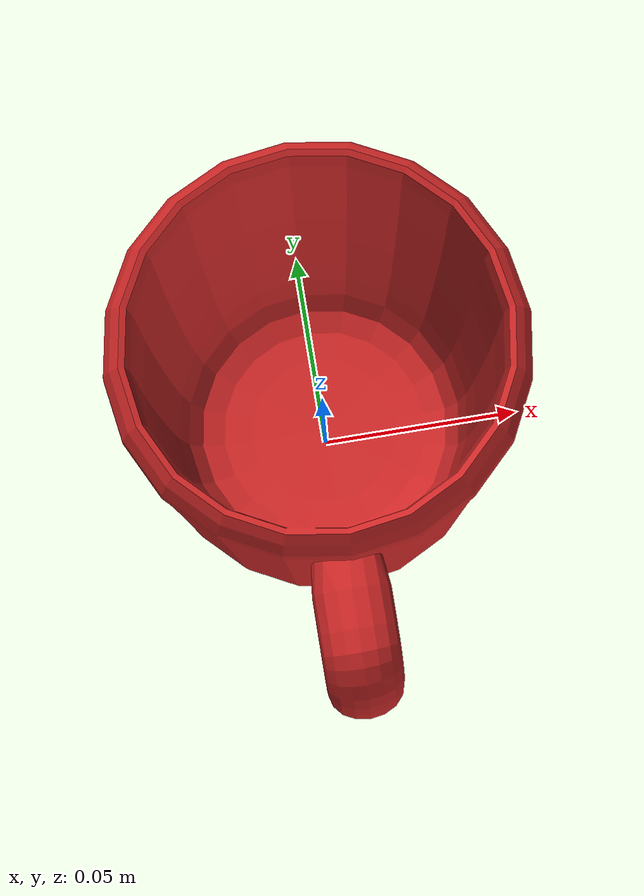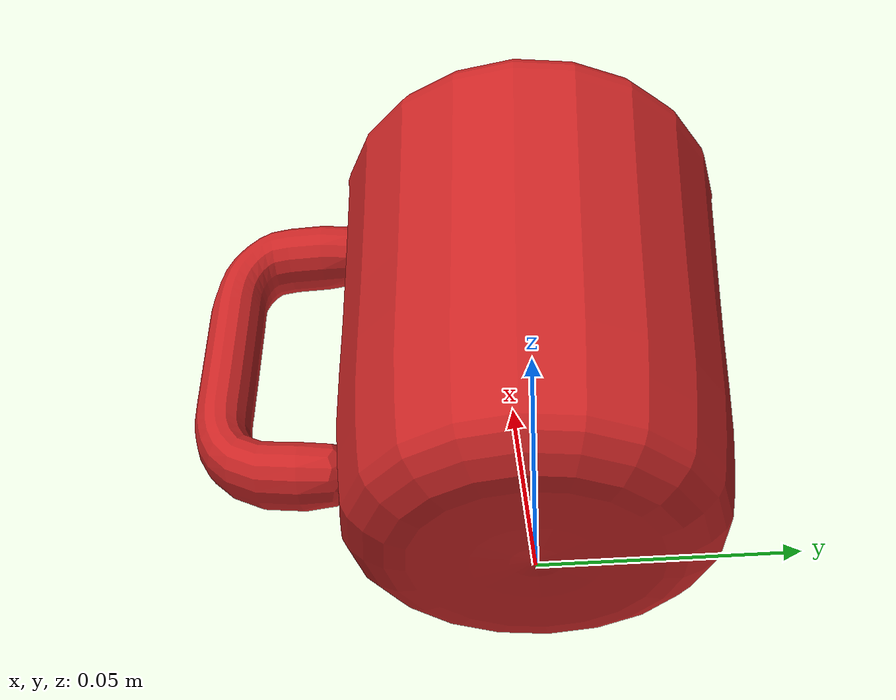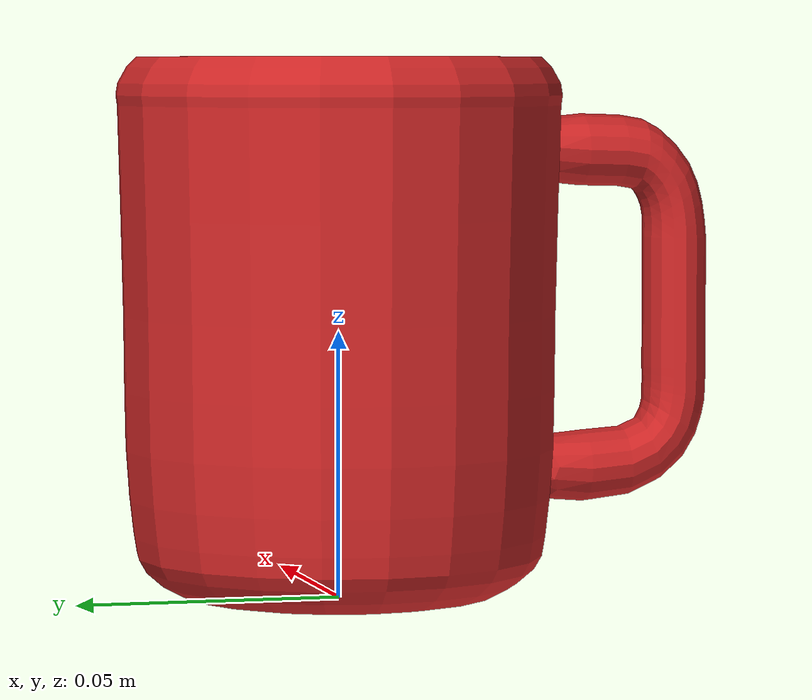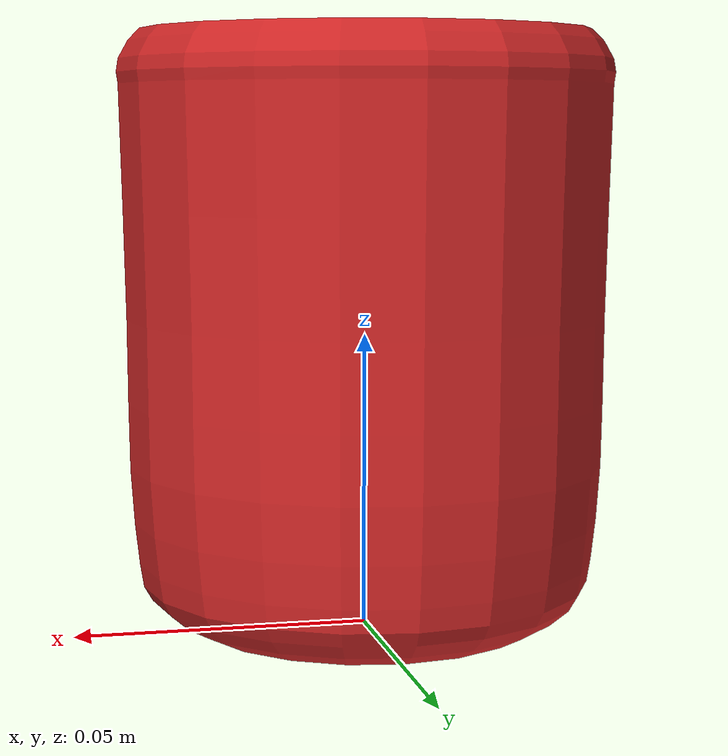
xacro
<robot
  xmlns:xacro="http://ros.org/wiki/xacro"
  name="race_mug_hot">

  <include filename="$(find active_perception_evaluation)/urdf/common.xacro" />

  <xacro:property name="cup_radius" value="0.04" />
  <xacro:property name="cup_height" value="0.10" />
  <xacro:property name="cup_mass" value="0.300" />

  <link name="body">
    <xacro:cylinder_inertial radius="${cup_radius}" length="${cup_height}"
      mass="${cup_mass}" origin="0 0 ${cup_height/2 - 0.01}" />

    <visual>
      <origin xyz="0 0 0" rpy="0 0 0" />
      <geometry>
        <mesh filename="package://active_perception_evaluation/Media/models/race_mug3.dae" scale="1 1 1" />
      </geometry>
    </visual>

    <collision>
      <origin xyz="0 0 ${cup_height/2}" rpy="0 0 0"/>
      <geometry>
        <cylinder radius="${cup_radius}" length="${cup_height}"/>
      </geometry>
    </collision>
  </link>

  <gazebo reference="body">
    <material>Gazebo/RedGlow</material>
  </gazebo>

</robot>

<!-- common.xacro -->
<robot
  xmlns:xacro="http://ros.org/wiki/xacro">
  <property name="M_PI" value="3.1415926535897931" />

  <!-- see https://secure.wikimedia.org/wikipedia/en/wiki/List_of_moment_of_inertia_tensors -->
  <xacro:macro name="sphere_inertial" params="radius mass origin">
    <inertial>
      <mass value="${mass}" />
      <origin xyz="${origin}" />
      <inertia ixx="${0.4 * mass * radius * radius}" ixy="0.0" ixz="0.0"
        iyy="${0.4 * mass * radius * radius}" iyz="0.0"
        izz="${0.4 * mass * radius * radius}" />
    </inertial>
  </xacro:macro>

  <xacro:macro name="cylinder_inertial" params="radius length mass origin">
    <inertial>
      <mass value="${mass}" />
      <origin xyz="${origin}" />
      <inertia ixx="${0.0833333 * mass * (3 * radius * radius + length * length)}" ixy="0.0" ixz="0.0"
        iyy="${0.0833333 * mass * (3 * radius * radius + length * length)}" iyz="0.0"
        izz="${0.5 * mass * radius * radius}" />
    </inertial>
  </xacro:macro>

  <xacro:macro name="box_inertial" params="x y z mass origin">
    <inertial>
      <mass value="${mass}" />
      <origin xyz="${origin}" />
      <inertia ixx="${0.0833333 * mass * (y*y + z*z)}" ixy="0.0" ixz="0.0"
        iyy="${0.0833333 * mass * (x*x + z*z)}" iyz="0.0"
        izz="${0.0833333 * mass * (x*x + y*y)}" />
    </inertial>
  </xacro:macro>
</robot>
